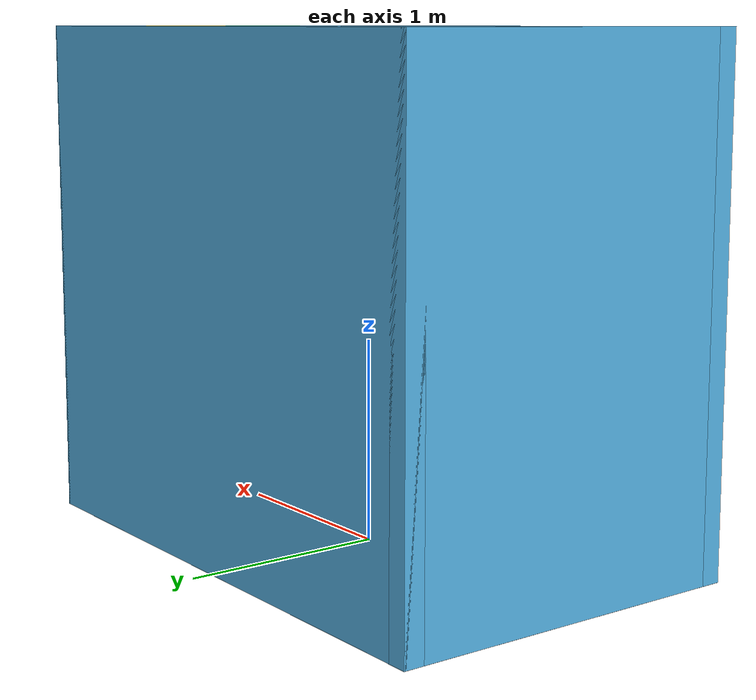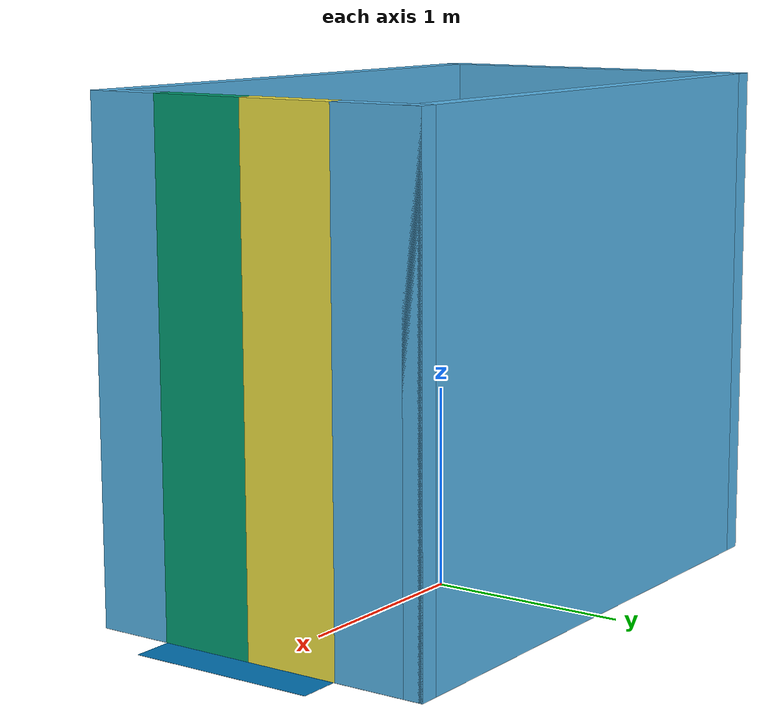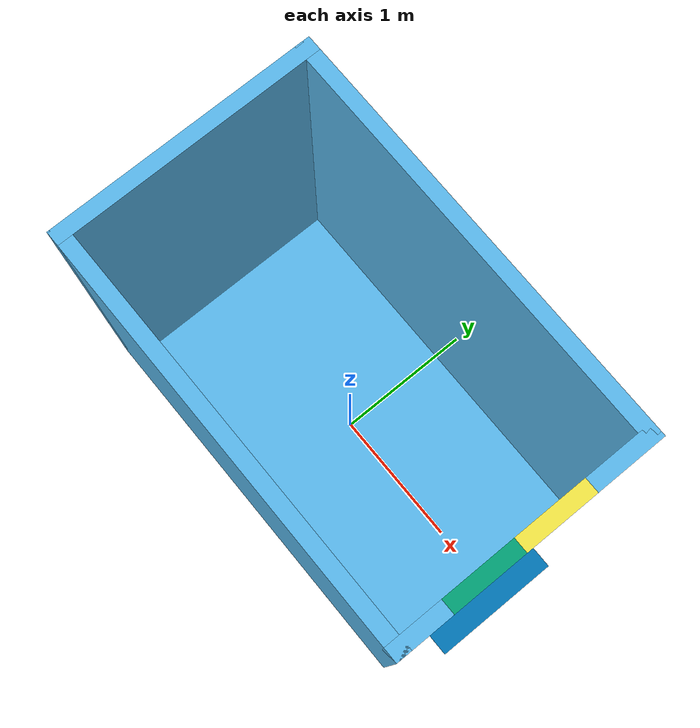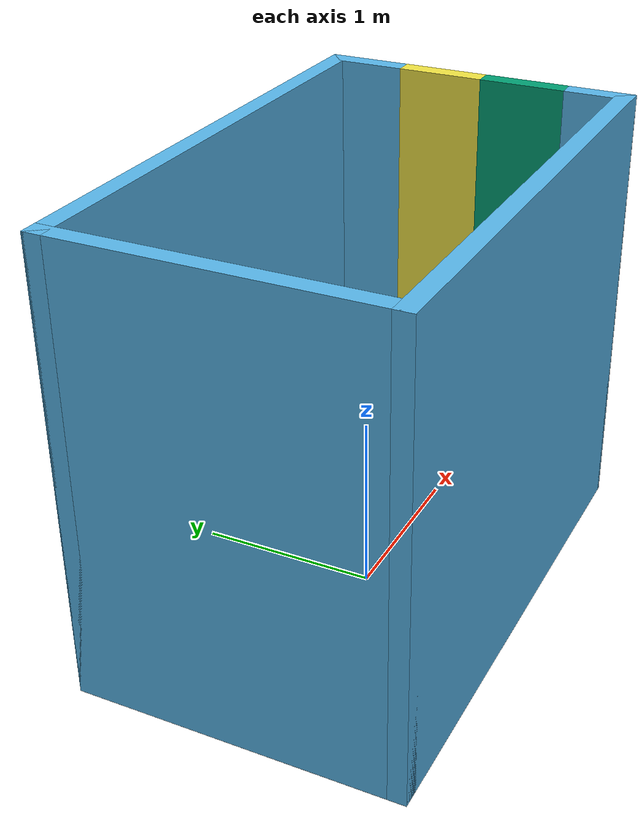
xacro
<?xml version="1.0"?>
<!-- Elevator -->
<robot name="elevator" xmlns:xacro="http://www.ros.org/wiki/xacro">

  <!--Properties-constants-->
  <xacro:property name="floor_mass" value="100"/>
  <xacro:property name="floor_dx" value="2.91"/>
  <xacro:property name="floor_dy" value="1.8"/>
  <xacro:property name="floor_dz" value="0.001"/>

  <xacro:property name="wall_thickness" value="0.1"/>
  <xacro:property name="wall_height" value="2.5"/>
  <xacro:property name="wall_rightdoor_width" value="0.4625"/>
  <xacro:property name="wall_leftdoor_width" value="0.375"/>

  <xacro:property name="door_mass" value="50"/>
  <xacro:property name="door_dx" value="0.1"/>
  <xacro:property name="door_dy" value="${floor_dy-wall_rightdoor_width-wall_leftdoor_width}"/>
  <xacro:property name="door_dz" value="2.5"/>

  <xacro:property name="roof_length" value="1"/>
  <xacro:property name="roof_height" value="0.6"/>

  <!--Include gazebo ros_control plugin-->
  <xacro:include filename="$(find elevator_description)/urdf/elevator.gazebo" />

  <!--Links (world, elevatorcab_link, doorleft_link, doorright_link)-->
  <link name="world"/>

  <link name="elevatorcab_link">

    <collision name="floor_collision">
	  <geometry>
	    <box size="${floor_dx} ${floor_dy} ${floor_dz}"/>
	  </geometry>
    </collision>
    <visual name="floor_visual">
	  <geometry>
	    <box size="${floor_dx} ${floor_dy} ${floor_dz}"/>
	  </geometry>
    </visual>

    <!-- wall1 is the wall to the right of the door, when facing
    the door-->
    <collision name="wall1_collision">
      <origin xyz="${floor_dx/2-wall_thickness/2} ${floor_dy/2-wall_rightdoor_width/2} ${wall_height/2}" rpy="0 0 0"/>
      <geometry>
	    <box size="${wall_thickness} ${wall_rightdoor_width} ${wall_height}"/>
      </geometry>
    </collision>
    <visual name="wall1_visual">
      <origin xyz="${floor_dx/2-wall_thickness/2} ${floor_dy/2-wall_rightdoor_width/2} ${wall_height/2}" rpy="0 0 0"/>
      <geometry>
	    <box size="${wall_thickness} ${wall_rightdoor_width} ${wall_height}"/>
      </geometry>
    </visual>

    <!-- wall2 is the wall to the left of the door, when facing
    the door-->
    <collision name="wall2_collision">
      <origin xyz="${floor_dx/2-wall_thickness/2} ${-floor_dy/2+wall_leftdoor_width/2} ${wall_height/2}" rpy="0 0 0"/>
      <geometry>
	    <box size="${wall_thickness} ${wall_leftdoor_width} ${wall_height}"/>
      </geometry>
    </collision>
    <visual name="wall2_visual">
      <origin xyz="${floor_dx/2-wall_thickness/2} ${-floor_dy/2+wall_leftdoor_width/2} ${wall_height/2}" rpy="0 0 0"/>
      <geometry>
	    <box size="${wall_thickness} ${wall_leftdoor_width} ${wall_height}"/>
      </geometry>
    </visual>

    <!-- wall3 is the wall on the left side of the elevator, when
    facing the door-->
    <collision name="wall3_collision">
      <origin xyz="0 -${floor_dy/2-wall_thickness/2} ${wall_height/2}" rpy="0 0 0"/>
      <geometry>
	    <box size="${floor_dx} ${wall_thickness} ${wall_height}"/>
      </geometry>
    </collision>
    <visual name="wall3_visual">
      <origin xyz="0 -${floor_dy/2-wall_thickness/2} ${wall_height/2}" rpy="0 0 0"/>
      <geometry>
	    <box size="${floor_dx} ${wall_thickness} ${wall_height}"/>
      </geometry>
    </visual>

    <!-- wall4 is the wall at the back of the elevator, when facing
    the door-->
    <collision name="wall4_collision">
      <origin xyz="${-floor_dx/2+wall_thickness/2} 0 ${wall_height/2}" rpy="0 0 0"/>
      <geometry>
	    <box size="${wall_thickness} ${floor_dy} ${wall_height}"/>
      </geometry>
    </collision>
    <visual name="wall4_visual">
      <origin xyz="${-floor_dx/2+wall_thickness/2} 0 ${wall_height/2}" rpy="0 0 0"/>
      <geometry>
	    <box size="${wall_thickness} ${floor_dy} ${wall_height}"/>
      </geometry>
    </visual>

    <!-- wall5 is the wall on the right side of the elevator, when
    facing the door-->
    <collision name="wall5_collision">
      <origin xyz="0 ${floor_dy/2-wall_thickness/2} ${wall_height/2}" rpy="0 0 0"/>
      <geometry>
	    <box size="${floor_dx} ${wall_thickness} ${wall_height}"/>
      </geometry>
    </collision>
    <visual name="wall5_visual">
      <origin xyz="0 ${floor_dy/2-wall_thickness/2} ${wall_height/2}" rpy="0 0 0"/>
      <geometry>
	    <box size="${floor_dx} ${wall_thickness} ${wall_height}"/>
      </geometry>
    </visual>

    <inertial>
	    <mass value ="${floor_mass}"/>
	    <inertia
	    ixx="${floor_mass / 12.0 * (floor_dy*floor_dy + 0.5*0.5)}" ixy="0.0" ixz="0.0"
	    iyy="${floor_mass / 12.0 * (floor_dx*floor_dx + 0.5*0.5)}" iyz="0.0"
	    izz="${floor_mass / 12.0 * (floor_dx*floor_dx + floor_dy*floor_dy)}"/>
    </inertial>
  </link>

  <!--Door splitted in two links (doorleft_link, door_right) to be able
  to open it with the building walls-->
  <link name="doorleft_link">
    <collision name="doorleft_collision">
      <geometry>
	    <box size="${door_dx} ${door_dy/2} ${door_dz}"/>
      </geometry>
    </collision>

    <visual name="doorleft_visual">
      <geometry>
	    <box size="${door_dx} ${door_dy/2} ${door_dz}"/>
      </geometry>
    </visual>

    <inertial>
      <mass value="${door_mass/2}"/>
      <inertia
      ixx="${door_mass/2 / 12.0 * (door_dy*door_dy + door_dz*door_dz)}" ixy="0.0" ixz="0.0"
      iyy="${door_mass/2 / 12.0 * (door_dx*door_dx + door_dz*door_dz)}" iyz="0.0"
      izz="${door_mass/2 / 12.0 * (door_dx*door_dx + door_dy*door_dy)}"/>
    </inertial>
  </link>

  <link name="doorright_link">
    <collision name="doorright_collision">
      <geometry>
	    <box size="${door_dx} ${door_dy/2} ${door_dz}"/>
      </geometry>
    </collision>

    <visual name="doorright_visual">
      <geometry>
	    <box size="${door_dx} ${door_dy/2} ${door_dz}"/>
      </geometry>
    </visual>

    <inertial>
      <mass value="${door_mass/2}"/>
      <inertia
      ixx="${door_mass/2 / 12.0 * (door_dy*door_dy + door_dz*door_dz)}" ixy="0.0" ixz="0.0"
      iyy="${door_mass/2 / 12.0 * (door_dx*door_dx + door_dz*door_dz)}" iyz="0.0"
      izz="${door_mass/2 / 12.0 * (door_dx*door_dx + door_dy*door_dy)}"/>
    </inertial>
  </link>

  <link name="floorextension_link">
    <collision name="floorextension_collision">
      <geometry>
	    <box size="0.2 0.95 ${floor_dz}"/>
      </geometry>
    </collision>
    <visual name="floorextension_visual">
      <geometry>
	    <box size="0.2 0.95 ${floor_dz}"/>
      </geometry>
    </visual>

    <inertial>
      <mass value="50"/>
      <inertia
      ixx="${50 / 12.0 * (0.95*0.95 + floor_dz*floor_dz)}" ixy="0.0" ixz="0.0"
      iyy="${50 / 12.0 * (0.2*0.2 + floor_dz*floor_dz)}" iyz="0.0"
      izz="${50 / 12.0 * (0.2*0.2 + 0.95*0.95)}"/>
    </inertial>
  </link>

  <!--Joint (elevatorcab_joint, doorleft_joint, doorright_joint)-->
  <joint name="elevatorcab_joint" type="prismatic">
    <parent link="world"/>
    <child link="elevatorcab_link"/>
    <origin xyz="0 0 0" rpy="0 0 0"/>
    <axis xyz="0 0 1"/>
    <dynamics damping="800.0"/>
    <limit effort="25000" velocity="1.0" lower="0" upper="150"/>
  </joint>

  <joint name="doorleft_joint" type="prismatic">
    <parent link="elevatorcab_link"/>
    <child link="doorleft_link"/>
    <origin xyz="${floor_dx/2-door_dx/2} ${floor_dy/2-wall_rightdoor_width-3*door_dy/4} ${door_dz/2+0.0001}" rpy="0 0 0"/>
    <axis xyz="0 1 0"/>
    <limit effort="50" velocity="5.0" lower="0" upper="0.94375"/>
  </joint>

  <joint name="doorright_joint" type="prismatic">
    <parent link="elevatorcab_link"/>
    <child link="doorright_link"/>
    <origin xyz="${floor_dx/2-door_dx/2} ${floor_dy/2-wall_rightdoor_width-door_dy/4} ${door_dz/2+0.0001}" rpy="0 0 0"/>
    <axis xyz="0 1 0"/>
    <limit effort="50" velocity="5.0" lower="0" upper="0.4625"/>
  </joint>

  <joint name="floorextension_joint" type="prismatic">
    <parent link="elevatorcab_link"/>
    <child link="floorextension_link"/>
    <origin xyz="${floor_dx/2+0.1} ${floor_dy/2-wall_rightdoor_width-door_dy/2} ${-floor_dz/2}" rpy="0 0 0"/>
    <axis xyz="1 0 0"/>
    <limit effort="10000" velocity="100" lower="-0.2" upper="0"/>
  </joint>

  <!--Transmission (elevatorcab_transmission, doorleft_transmission, doorright_transmission)-->
  <transmission name="elevatorcab_transmission">
    <type>transmission_interface/SimpleTransmission</type>
    <joint name="elevatorcab_joint">
      <hardwareInterface>hardware_interface/EffortJointInterface</hardwareInterface>
    </joint>
    <actuator name="elevatorcab_motor">
      <hardwareInterface>hardware_interface/EffortJointInterface</hardwareInterface>
      <mechanicalReduction>1</mechanicalReduction>
    </actuator>
  </transmission>

  <transmission name="doorleft_transmission">
    <type>transmission_interface/SimpleTransmission</type>
    <joint name="doorleft_joint">
      <hardwareInterface>hardware_interface/EffortJointInterface</hardwareInterface>
    </joint>
    <actuator name="doorleft_motor">
      <hardwareInterface>hardware_interface/EffortJointInterface</hardwareInterface>
      <mechanicalReduction>1</mechanicalReduction>
    </actuator>
  </transmission>

  <transmission name="doorright_transmission">
    <type>transmission_interface/SimpleTransmission</type>
    <joint name="doorright_joint">
      <hardwareInterface>hardware_interface/EffortJointInterface</hardwareInterface>
    </joint>
    <actuator name="doorright_motor">
      <hardwareInterface>hardware_interface/EffortJointInterface</hardwareInterface>
      <mechanicalReduction>1</mechanicalReduction>
    </actuator>
  </transmission>

  <transmission name="floorextension_transmission">
    <type>transmission_interface/SimpleTransmission</type>
    <joint name="floorextension_joint">
      <hardwareInterface>hardware_interface/EffortJointInterface</hardwareInterface>
    </joint>
    <actuator name="floorextension_motor">
      <hardwareInterface>hardware_interface/EffortJointInterface</hardwareInterface>
      <mechanicalReduction>1</mechanicalReduction>
    </actuator>
  </transmission>

</robot>
